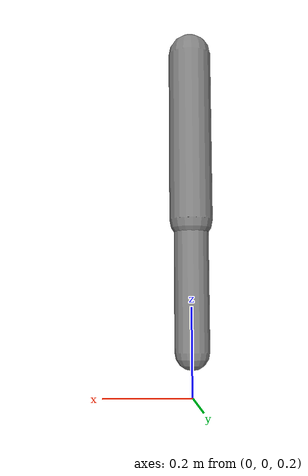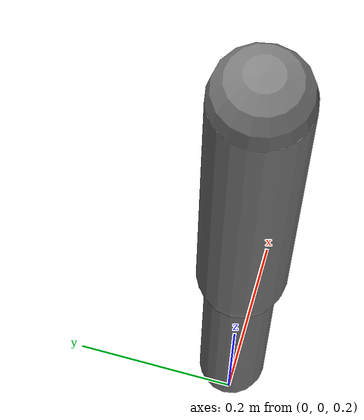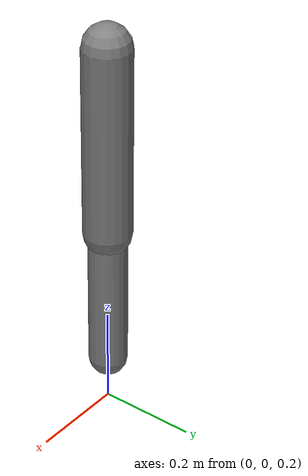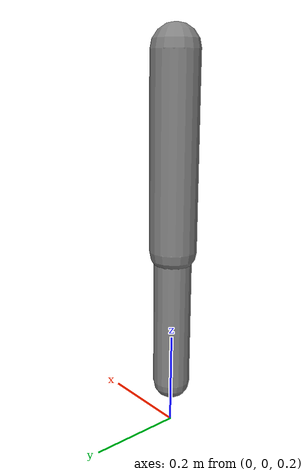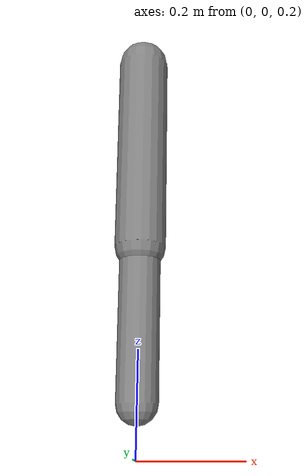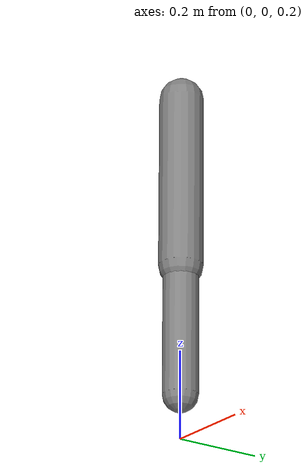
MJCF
<mujoco model="sensors">
  <compiler angle="radian"/>
  <worldbody>
    <body name="upper" pos="0 0 1">
      <joint name="shoulder" type="hinge" axis="0 1 0" pos="0 0 0"/>
      <geom type="capsule" fromto="0 0 0 0 0 -0.4" size="0.05" mass="1.5"/>
      <body name="lower" pos="0 0 -0.4">
        <joint name="elbow" type="hinge" axis="0 1 0" pos="0 0 0"/>
        <geom type="capsule" fromto="0 0 0 0 0 -0.3" size="0.04" mass="0.8"/>
        <site name="tip" pos="0 0 -0.3" size="0.01"/>
      </body>
    </body>
  </worldbody>
  <actuator>
    <motor name="shoulder_motor" joint="shoulder" gear="1"/>
    <motor name="elbow_motor" joint="elbow" gear="1"/>
  </actuator>
  <sensor>
    <jointpos name="shoulder_q" joint="shoulder"/>
    <jointvel name="shoulder_qd" joint="shoulder"/>
    <jointpos name="elbow_q" joint="elbow"/>
    <framepos name="tip_pos" objtype="site" objname="tip"/>
    <framequat name="tip_quat" objtype="site" objname="tip"/>
    <velocimeter name="tip_vel" site="tip"/>
    <gyro name="tip_gyro" site="tip"/>
    <accelerometer name="tip_acc" site="tip"/>
    <actuatorfrc name="elbow_force" actuator="elbow_motor"/>
  </sensor>
</mujoco>
